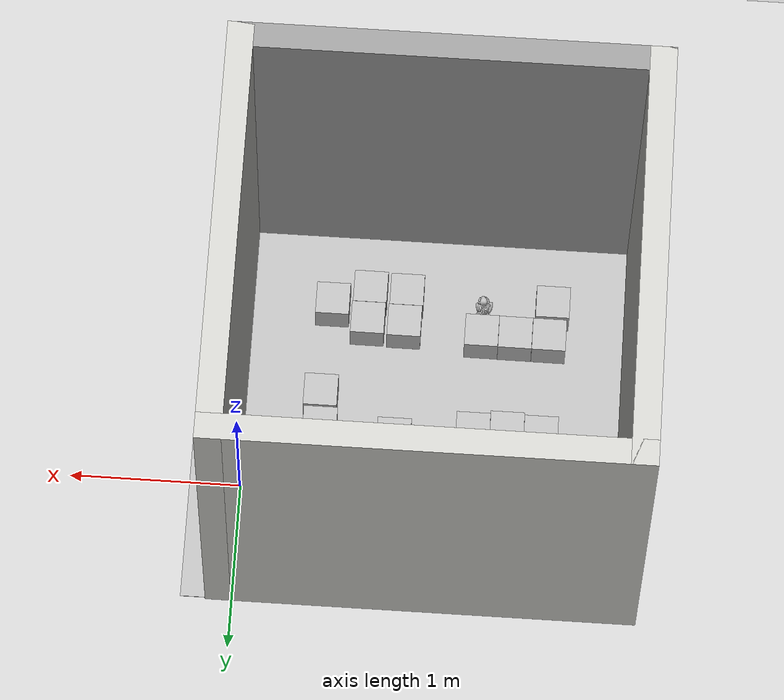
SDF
<sdf version="1.7">
 <world name="default">
  <light name="sun" type="directional">
   <pose>0 0 10 0 -0 0</pose>
   <diffuse>0.8 0.8 0.8 1</diffuse>
   <specular>0.2 0.2 0.2 1</specular>
   <attenuation>
    <range>1000</range>
    <constant>0.9</constant>
    <linear>0.01</linear>
    <quadratic>0.001</quadratic>
   </attenuation>
   <direction>-0.5 0.1 -0.9</direction>
   <spot><inner_angle>0</inner_angle><outer_angle>0</outer_angle><falloff>0</falloff></spot>
  </light>
  <model name="ground_plane">
   <static>1</static>
   <link name="link">
    <collision name="collision">
     <geometry><plane><normal>0 0 1</normal><size>100 100</size></plane></geometry>
     <surface>
      <contact><collide_bitmask>65535</collide_bitmask></contact>
      <friction><ode><mu>100</mu><mu2>50</mu2></ode></friction>
     </surface>
    </collision>
    <visual name="visual">
     <cast_shadows>0</cast_shadows>
     <geometry><plane><normal>0 0 1</normal><size>1 1</size></plane></geometry>
     <material>
      <script><uri>file://media/materials/scripts/gazebo.material</uri><name>Gazebo/Grey</name></script>
     </material>
    </visual>
   </link>
  </model>
  <gravity>0 0 -9.8</gravity>
  <magnetic_field>6e-06 2.3e-05 -4.2e-05</magnetic_field>
  <atmosphere type="adiabatic"/>
  <physics type="ode">
   <max_step_size>0.001</max_step_size>
   <real_time_factor>1</real_time_factor>
   <real_time_update_rate>1000</real_time_update_rate>
  </physics>
  <scene><ambient>0.4 0.4 0.4 1</ambient><background>0.7 0.7 0.7 1</background><shadows>1</shadows></scene>
  <audio><device>default</device></audio>
  <spherical_coordinates>
   <surface_model>EARTH_WGS84</surface_model>
   <latitude_deg>0</latitude_deg>
   <longitude_deg>0</longitude_deg>
   <elevation>0</elevation>
   <heading_deg>0</heading_deg>
  </spherical_coordinates>
  <model name="kalman_tapete_ciudad">
   <link name="link">
    <visual name="visual">
     <geometry><box><size>2.5 2.5 0.005</size></box></geometry>
     <material>
      <script>
       <uri>model://kalman_tapete_ciudad/material/script</uri>
       <uri>model://kalman_tapete_ciudad/material/textures</uri>
       <name>Custom/kalman_tapete_ciudad</name>
      </script>
     </material>
    </visual>
   </link>
   <static>1</static>
   <pose>-0.952242 -0.544491 0 0 -0 0</pose>
  </model>
  <model name="kalman_edificio">
   <pose>-1.75873 -0.999868 0.099 0 -0 -0.003254</pose>
   <link name="link">
    <inertial>
     <mass>2</mass>
     <inertia>
      <ixx>0.0416667</ixx>
      <ixy>0</ixy>
      <ixz>0</ixz>
      <iyy>0.0566667</iyy>
      <iyz>0</iyz>
      <izz>0.0683333</izz>
     </inertia>
    </inertial>
    <collision name="collision">
     <geometry><box><size>0.2 0.2 0.2</size></box></geometry>
     <surface>
      <friction><ode><mu>1</mu><mu2>1</mu2></ode></friction>
      <contact><ode><kp>1e+07</kp><kd>1</kd><min_depth>0.001</min_depth><max_vel>0.1</max_vel></ode></contact>
     </surface>
    </collision>
    <visual name="visual">
     <pose>0 0 -0.1 0 -0 0</pose>
     <geometry>
      <mesh><uri>model://kalman_edificio/meshes/kalman_edificio.dae</uri><scale>0.5 0.5 0.5</scale></mesh>
     </geometry>
    </visual>
   </link>
  </model>
  <model name="kalman_edificio_0">
   <pose>-1.5593 -1.00118 0.099 0 0 -0.003276</pose>
   <link name="link">
    <inertial>
     <mass>2</mass>
     <inertia>
      <ixx>0.0416667</ixx>
      <ixy>0</ixy>
      <ixz>0</ixz>
      <iyy>0.0566667</iyy>
      <iyz>0</iyz>
      <izz>0.0683333</izz>
     </inertia>
    </inertial>
    <collision name="collision">
     <geometry><box><size>0.2 0.2 0.2</size></box></geometry>
     <surface>
      <friction><ode><mu>1</mu><mu2>1</mu2></ode></friction>
      <contact><ode><kp>1e+07</kp><kd>1</kd><min_depth>0.001</min_depth><max_vel>0.1</max_vel></ode></contact>
     </surface>
    </collision>
    <visual name="visual">
     <pose>0 0 -0.1 0 -0 0</pose>
     <geometry>
      <mesh><uri>model://kalman_edificio/meshes/kalman_edificio.dae</uri><scale>0.5 0.5 0.5</scale></mesh>
     </geometry>
    </visual>
   </link>
  </model>
  <model name="kalman_edificio_1">
   <pose>-1.35987 -1.00319 0.099 -0 -0 -0.003325</pose>
   <link name="link">
    <inertial>
     <mass>2</mass>
     <inertia>
      <ixx>0.0416667</ixx>
      <ixy>0</ixy>
      <ixz>0</ixz>
      <iyy>0.0566667</iyy>
      <iyz>0</iyz>
      <izz>0.0683333</izz>
     </inertia>
    </inertial>
    <collision name="collision">
     <geometry><box><size>0.2 0.2 0.2</size></box></geometry>
     <surface>
      <friction><ode><mu>1</mu><mu2>1</mu2></ode></friction>
      <contact><ode><kp>1e+07</kp><kd>1</kd><min_depth>0.001</min_depth><max_vel>0.1</max_vel></ode></contact>
     </surface>
    </collision>
    <visual name="visual">
     <pose>0 0 -0.1 0 -0 0</pose>
     <geometry>
      <mesh><uri>model://kalman_edificio/meshes/kalman_edificio.dae</uri><scale>0.5 0.5 0.5</scale></mesh>
     </geometry>
    </visual>
   </link>
  </model>
  <model name="kalman_edificio_2">
   <pose>-0.900582 -1.03661 0.099 0 0 -0.000802</pose>
   <link name="link">
    <inertial>
     <mass>2</mass>
     <inertia>
      <ixx>0.0416667</ixx>
      <ixy>0</ixy>
      <ixz>0</ixz>
      <iyy>0.0566667</iyy>
      <iyz>0</iyz>
      <izz>0.0683333</izz>
     </inertia>
    </inertial>
    <collision name="collision">
     <geometry><box><size>0.2 0.2 0.2</size></box></geometry>
     <surface>
      <friction><ode><mu>1</mu><mu2>1</mu2></ode></friction>
      <contact><ode><kp>1e+07</kp><kd>1</kd><min_depth>0.001</min_depth><max_vel>0.1</max_vel></ode></contact>
     </surface>
    </collision>
    <visual name="visual">
     <pose>0 0 -0.1 0 -0 0</pose>
     <geometry>
      <mesh><uri>model://kalman_edificio/meshes/kalman_edificio.dae</uri><scale>0.5 0.5 0.5</scale></mesh>
     </geometry>
    </visual>
   </link>
  </model>
  <model name="kalman_edificio_3">
   <pose>-0.683905 -1.04214 0.099 0 0 -0.003459</pose>
   <link name="link">
    <inertial>
     <mass>2</mass>
     <inertia>
      <ixx>0.0416667</ixx>
      <ixy>0</ixy>
      <ixz>0</ixz>
      <iyy>0.0566667</iyy>
      <iyz>0</iyz>
      <izz>0.0683333</izz>
     </inertia>
    </inertial>
    <collision name="collision">
     <geometry><box><size>0.2 0.2 0.2</size></box></geometry>
     <surface>
      <friction><ode><mu>1</mu><mu2>1</mu2></ode></friction>
      <contact><ode><kp>1e+07</kp><kd>1</kd><min_depth>0.001</min_depth><max_vel>0.1</max_vel></ode></contact>
     </surface>
    </collision>
    <visual name="visual">
     <pose>0 0 -0.1 0 -0 0</pose>
     <geometry>
      <mesh><uri>model://kalman_edificio/meshes/kalman_edificio.dae</uri><scale>0.5 0.5 0.5</scale></mesh>
     </geometry>
    </visual>
   </link>
  </model>
  <model name="kalman_edificio_4">
   <pose>-0.905453 -1.23575 0.099 0 0 -0.00079</pose>
   <link name="link">
    <inertial>
     <mass>2</mass>
     <inertia>
      <ixx>0.0416667</ixx>
      <ixy>0</ixy>
      <ixz>0</ixz>
      <iyy>0.0566667</iyy>
      <iyz>0</iyz>
      <izz>0.0683333</izz>
     </inertia>
    </inertial>
    <collision name="collision">
     <geometry><box><size>0.2 0.2 0.2</size></box></geometry>
     <surface>
      <friction><ode><mu>1</mu><mu2>1</mu2></ode></friction>
      <contact><ode><kp>1e+07</kp><kd>1</kd><min_depth>0.001</min_depth><max_vel>0.1</max_vel></ode></contact>
     </surface>
    </collision>
    <visual name="visual">
     <pose>0 0 -0.1 0 -0 0</pose>
     <geometry>
      <mesh><uri>model://kalman_edificio/meshes/kalman_edificio.dae</uri><scale>0.5 0.5 0.5</scale></mesh>
     </geometry>
    </visual>
   </link>
  </model>
  <model name="kalman_edificio_5">
   <pose>-0.688628 -1.24132 0.099 0 0 -0.003459</pose>
   <link name="link">
    <inertial>
     <mass>2</mass>
     <inertia>
      <ixx>0.0416667</ixx>
      <ixy>0</ixy>
      <ixz>0</ixz>
      <iyy>0.0566667</iyy>
      <iyz>0</iyz>
      <izz>0.0683333</izz>
     </inertia>
    </inertial>
    <collision name="collision">
     <geometry><box><size>0.2 0.2 0.2</size></box></geometry>
     <surface>
      <friction><ode><mu>1</mu><mu2>1</mu2></ode></friction>
      <contact><ode><kp>1e+07</kp><kd>1</kd><min_depth>0.001</min_depth><max_vel>0.1</max_vel></ode></contact>
     </surface>
    </collision>
    <visual name="visual">
     <pose>0 0 -0.1 0 -0 0</pose>
     <geometry>
      <mesh><uri>model://kalman_edificio/meshes/kalman_edificio.dae</uri><scale>0.5 0.5 0.5</scale></mesh>
     </geometry>
    </visual>
   </link>
  </model>
  <model name="kalman_edificio_6">
   <pose>-0.88203 -0.312273 0.099 0 -0 0.003441</pose>
   <link name="link">
    <inertial>
     <mass>2</mass>
     <inertia>
      <ixx>0.0416667</ixx>
      <ixy>0</ixy>
      <ixz>0</ixz>
      <iyy>0.0566667</iyy>
      <iyz>0</iyz>
      <izz>0.0683333</izz>
     </inertia>
    </inertial>
    <collision name="collision">
     <geometry><box><size>0.2 0.2 0.2</size></box></geometry>
     <surface>
      <friction><ode><mu>1</mu><mu2>1</mu2></ode></friction>
      <contact><ode><kp>1e+07</kp><kd>1</kd><min_depth>0.001</min_depth><max_vel>0.1</max_vel></ode></contact>
     </surface>
    </collision>
    <visual name="visual">
     <pose>0 0 -0.1 0 -0 0</pose>
     <geometry>
      <mesh><uri>model://kalman_edificio/meshes/kalman_edificio.dae</uri><scale>0.5 0.5 0.5</scale></mesh>
     </geometry>
    </visual>
   </link>
  </model>
  <model name="kalman_edificio_7">
   <pose>-0.889023 -0.112903 0.099 0 -0 0.003273</pose>
   <link name="link">
    <inertial>
     <mass>2</mass>
     <inertia>
      <ixx>0.0416667</ixx>
      <ixy>0</ixy>
      <ixz>0</ixz>
      <iyy>0.0566667</iyy>
      <iyz>0</iyz>
      <izz>0.0683333</izz>
     </inertia>
    </inertial>
    <collision name="collision">
     <geometry><box><size>0.2 0.2 0.2</size></box></geometry>
     <surface>
      <friction><ode><mu>1</mu><mu2>1</mu2></ode></friction>
      <contact><ode><kp>1e+07</kp><kd>1</kd><min_depth>0.001</min_depth><max_vel>0.1</max_vel></ode></contact>
     </surface>
    </collision>
    <visual name="visual">
     <pose>0 0 -0.1 0 -0 0</pose>
     <geometry>
      <mesh><uri>model://kalman_edificio/meshes/kalman_edificio.dae</uri><scale>0.5 0.5 0.5</scale></mesh>
     </geometry>
    </visual>
   </link>
  </model>
  <model name="kalman_edificio_9">
   <pose>-0.470473 -1.15194 0.099 0 0 -0.000622</pose>
   <link name="link">
    <inertial>
     <mass>2</mass>
     <inertia>
      <ixx>0.0416667</ixx>
      <ixy>0</ixy>
      <ixz>0</ixz>
      <iyy>0.0566667</iyy>
      <iyz>0</iyz>
      <izz>0.0683333</izz>
     </inertia>
    </inertial>
    <collision name="collision">
     <geometry><box><size>0.2 0.2 0.2</size></box></geometry>
     <surface>
      <friction><ode><mu>1</mu><mu2>1</mu2></ode></friction>
      <contact><ode><kp>1e+07</kp><kd>1</kd><min_depth>0.001</min_depth><max_vel>0.1</max_vel></ode></contact>
     </surface>
    </collision>
    <visual name="visual">
     <pose>0 0 -0.1 0 -0 0</pose>
     <geometry>
      <mesh><uri>model://kalman_edificio/meshes/kalman_edificio.dae</uri><scale>0.5 0.5 0.5</scale></mesh>
     </geometry>
    </visual>
   </link>
  </model>
  <model name="kalman_edificio_10">
   <pose>-1.77103 -1.21133 0.099 0 -0 0</pose>
   <link name="link">
    <inertial>
     <mass>2</mass>
     <inertia>
      <ixx>0.0416667</ixx>
      <ixy>0</ixy>
      <ixz>0</ixz>
      <iyy>0.0566667</iyy>
      <iyz>0</iyz>
      <izz>0.0683333</izz>
     </inertia>
    </inertial>
    <collision name="collision">
     <geometry><box><size>0.2 0.2 0.2</size></box></geometry>
     <surface>
      <friction><ode><mu>1</mu><mu2>1</mu2></ode></friction>
      <contact><ode><kp>1e+07</kp><kd>1</kd><min_depth>0.001</min_depth><max_vel>0.1</max_vel></ode></contact>
     </surface>
    </collision>
    <visual name="visual">
     <pose>0 0 -0.1 0 -0 0</pose>
     <geometry>
      <mesh><uri>model://kalman_edificio/meshes/kalman_edificio.dae</uri><scale>0.5 0.5 0.5</scale></mesh>
     </geometry>
    </visual>
   </link>
  </model>
  <model name="kalman_edificio_12">
   <pose>-1.7405 -0.379601 0.099 0 -0 0.001007</pose>
   <link name="link">
    <inertial>
     <mass>2</mass>
     <inertia>
      <ixx>0.0416667</ixx>
      <ixy>0</ixy>
      <ixz>0</ixz>
      <iyy>0.0566667</iyy>
      <iyz>0</iyz>
      <izz>0.0683333</izz>
     </inertia>
    </inertial>
    <collision name="collision">
     <geometry><box><size>0.2 0.2 0.2</size></box></geometry>
     <surface>
      <friction><ode><mu>1</mu><mu2>1</mu2></ode></friction>
      <contact><ode><kp>1e+07</kp><kd>1</kd><min_depth>0.001</min_depth><max_vel>0.1</max_vel></ode></contact>
     </surface>
    </collision>
    <visual name="visual">
     <pose>0 0 -0.1 0 -0 0</pose>
     <geometry>
      <mesh><uri>model://kalman_edificio/meshes/kalman_edificio.dae</uri><scale>0.5 0.5 0.5</scale></mesh>
     </geometry>
    </visual>
   </link>
  </model>
  <model name="kalman_edificio_12_clone">
   <pose>-1.74118 0.036452 0.099 0 -0 0</pose>
   <link name="link">
    <inertial>
     <mass>2</mass>
     <inertia>
      <ixx>0.0416667</ixx>
      <ixy>0</ixy>
      <ixz>0</ixz>
      <iyy>0.0566667</iyy>
      <iyz>0</iyz>
      <izz>0.0683333</izz>
     </inertia>
    </inertial>
    <collision name="collision">
     <geometry><box><size>0.2 0.2 0.2</size></box></geometry>
     <surface>
      <friction><ode><mu>1</mu><mu2>1</mu2></ode></friction>
      <contact><ode><kp>1e+07</kp><kd>1</kd><min_depth>0.001</min_depth><max_vel>0.1</max_vel></ode></contact>
     </surface>
    </collision>
    <visual name="visual">
     <pose>0 0 -0.1 0 -0 0</pose>
     <geometry>
      <mesh><uri>model://kalman_edificio/meshes/kalman_edificio.dae</uri><scale>0.5 0.5 0.5</scale></mesh>
     </geometry>
    </visual>
   </link>
  </model>
  <model name="kalman_edificio_12_clone_0">
   <pose>-1.72625 -0.180352 0.099 0 -0 0.002305</pose>
   <link name="link">
    <inertial>
     <mass>2</mass>
     <inertia>
      <ixx>0.0416667</ixx>
      <ixy>0</ixy>
      <ixz>0</ixz>
      <iyy>0.0566667</iyy>
      <iyz>0</iyz>
      <izz>0.0683333</izz>
     </inertia>
    </inertial>
    <collision name="collision">
     <geometry><box><size>0.2 0.2 0.2</size></box></geometry>
     <surface>
      <friction><ode><mu>1</mu><mu2>1</mu2></ode></friction>
      <contact><ode><kp>1e+07</kp><kd>1</kd><min_depth>0.001</min_depth><max_vel>0.1</max_vel></ode></contact>
     </surface>
    </collision>
    <visual name="visual">
     <pose>0 0 -0.1 0 -0 0</pose>
     <geometry>
      <mesh><uri>model://kalman_edificio/meshes/kalman_edificio.dae</uri><scale>0.5 0.5 0.5</scale></mesh>
     </geometry>
    </visual>
   </link>
  </model>
  <model name="kalman_edificio_12_clone_1">
   <pose>-1.5414 -0.393369 0.099 0 -0 0.000686</pose>
   <link name="link">
    <inertial>
     <mass>2</mass>
     <inertia>
      <ixx>0.0416667</ixx>
      <ixy>0</ixy>
      <ixz>0</ixz>
      <iyy>0.0566667</iyy>
      <iyz>0</iyz>
      <izz>0.0683333</izz>
     </inertia>
    </inertial>
    <collision name="collision">
     <geometry><box><size>0.2 0.2 0.2</size></box></geometry>
     <surface>
      <friction><ode><mu>1</mu><mu2>1</mu2></ode></friction>
      <contact><ode><kp>1e+07</kp><kd>1</kd><min_depth>0.001</min_depth><max_vel>0.1</max_vel></ode></contact>
     </surface>
    </collision>
    <visual name="visual">
     <pose>0 0 -0.1 0 -0 0</pose>
     <geometry>
      <mesh><uri>model://kalman_edificio/meshes/kalman_edificio.dae</uri><scale>0.5 0.5 0.5</scale></mesh>
     </geometry>
    </visual>
   </link>
  </model>
  <model name="kalman_edificio_12_clone_2">
   <pose>-1.34217 -0.376745 0.099 0 -0 0.000672</pose>
   <link name="link">
    <inertial>
     <mass>2</mass>
     <inertia>
      <ixx>0.0416667</ixx>
      <ixy>0</ixy>
      <ixz>0</ixz>
      <iyy>0.0566667</iyy>
      <iyz>0</iyz>
      <izz>0.0683333</izz>
     </inertia>
    </inertial>
    <collision name="collision">
     <geometry><box><size>0.2 0.2 0.2</size></box></geometry>
     <surface>
      <friction><ode><mu>1</mu><mu2>1</mu2></ode></friction>
      <contact><ode><kp>1e+07</kp><kd>1</kd><min_depth>0.001</min_depth><max_vel>0.1</max_vel></ode></contact>
     </surface>
    </collision>
    <visual name="visual">
     <pose>0 0 -0.1 0 -0 0</pose>
     <geometry>
      <mesh><uri>model://kalman_edificio/meshes/kalman_edificio.dae</uri><scale>0.5 0.5 0.5</scale></mesh>
     </geometry>
    </visual>
   </link>
  </model>
  <model name="kalman_edificio_12_clone_3">
   <pose>-0.886027 0.0865 0.099 0 -0 0.0031</pose>
   <link name="link">
    <inertial>
     <mass>2</mass>
     <inertia>
      <ixx>0.0416667</ixx>
      <ixy>0</ixy>
      <ixz>0</ixz>
      <iyy>0.0566667</iyy>
      <iyz>0</iyz>
      <izz>0.0683333</izz>
     </inertia>
    </inertial>
    <collision name="collision">
     <geometry><box><size>0.2 0.2 0.2</size></box></geometry>
     <surface>
      <friction><ode><mu>1</mu><mu2>1</mu2></ode></friction>
      <contact><ode><kp>1e+07</kp><kd>1</kd><min_depth>0.001</min_depth><max_vel>0.1</max_vel></ode></contact>
     </surface>
    </collision>
    <visual name="visual">
     <pose>0 0 -0.1 0 -0 0</pose>
     <geometry>
      <mesh><uri>model://kalman_edificio/meshes/kalman_edificio.dae</uri><scale>0.5 0.5 0.5</scale></mesh>
     </geometry>
    </visual>
   </link>
  </model>
  <model name="kalman_edificio_12_clone_4">
   <pose>-0.437006 -0.564046 0.099 0 -0 0</pose>
   <link name="link">
    <inertial>
     <mass>2</mass>
     <inertia>
      <ixx>0.0416667</ixx>
      <ixy>0</ixy>
      <ixz>0</ixz>
      <iyy>0.0566667</iyy>
      <iyz>0</iyz>
      <izz>0.0683333</izz>
     </inertia>
    </inertial>
    <collision name="collision">
     <geometry><box><size>0.2 0.2 0.2</size></box></geometry>
     <surface>
      <friction><ode><mu>1</mu><mu2>1</mu2></ode></friction>
      <contact><ode><kp>1e+07</kp><kd>1</kd><min_depth>0.001</min_depth><max_vel>0.1</max_vel></ode></contact>
     </surface>
    </collision>
    <visual name="visual">
     <pose>0 0 -0.1 0 -0 0</pose>
     <geometry>
      <mesh><uri>model://kalman_edificio/meshes/kalman_edificio.dae</uri><scale>0.5 0.5 0.5</scale></mesh>
     </geometry>
    </visual>
   </link>
  </model>
  <model name="kalman_edificio_12_clone_5">
   <pose>-0.444917 -0.355635 0.099 0 -0 0</pose>
   <link name="link">
    <inertial>
     <mass>2</mass>
     <inertia>
      <ixx>0.0416667</ixx>
      <ixy>0</ixy>
      <ixz>0</ixz>
      <iyy>0.0566667</iyy>
      <iyz>0</iyz>
      <izz>0.0683333</izz>
     </inertia>
    </inertial>
    <collision name="collision">
     <geometry><box><size>0.2 0.2 0.2</size></box></geometry>
     <surface>
      <friction><ode><mu>1</mu><mu2>1</mu2></ode></friction>
      <contact><ode><kp>1e+07</kp><kd>1</kd><min_depth>0.001</min_depth><max_vel>0.1</max_vel></ode></contact>
     </surface>
    </collision>
    <visual name="visual">
     <pose>0 0 -0.1 0 -0 0</pose>
     <geometry>
      <mesh><uri>model://kalman_edificio/meshes/kalman_edificio.dae</uri><scale>0.5 0.5 0.5</scale></mesh>
     </geometry>
    </visual>
   </link>
  </model>
  <model name="kalman_edificio_12_clone_6">
   <pose>-0.439251 -0.154091 0.099 0 -0 0.001121</pose>
   <link name="link">
    <inertial>
     <mass>2</mass>
     <inertia>
      <ixx>0.0416667</ixx>
      <ixy>0</ixy>
      <ixz>0</ixz>
      <iyy>0.0566667</iyy>
      <iyz>0</iyz>
      <izz>0.0683333</izz>
     </inertia>
    </inertial>
    <collision name="collision">
     <geometry><box><size>0.2 0.2 0.2</size></box></geometry>
     <surface>
      <friction><ode><mu>1</mu><mu2>1</mu2></ode></friction>
      <contact><ode><kp>1e+07</kp><kd>1</kd><min_depth>0.001</min_depth><max_vel>0.1</max_vel></ode></contact>
     </surface>
    </collision>
    <visual name="visual">
     <pose>0 0 -0.1 0 -0 0</pose>
     <geometry>
      <mesh><uri>model://kalman_edificio/meshes/kalman_edificio.dae</uri><scale>0.5 0.5 0.5</scale></mesh>
     </geometry>
    </visual>
   </link>
  </model>
  <model name="Squirrel">
   <link name="link_0">
    <visual name="visual">
     <geometry>
      <mesh><uri>/ros2_ws/install/kalman_gazebo/share/kalman_gazebo/models/squirrel/meshes/model.obj</uri></mesh>
     </geometry>
    </visual>
    <collision name="collision_0">
     <geometry>
      <mesh><uri>/ros2_ws/install/kalman_gazebo/share/kalman_gazebo/models/squirrel/meshes/model.obj</uri></mesh>
     </geometry>
    </collision>
    <inertial>
     <inertia><ixx>1</ixx><ixy>0</ixy><ixz>0</ixz><iyy>1</iyy><iyz>0</iyz><izz>1</izz></inertia>
     <mass>1</mass>
    </inertial>
   </link>
   <pose>-1.36742 -1.20353 -7.5e-05 -0.002133 -0.004121 5e-06</pose>
  </model>
  <model name="Squirrel_0">
   <link name="link_0">
    <visual name="visual">
     <geometry>
      <mesh><uri>/ros2_ws/install/kalman_gazebo/share/kalman_gazebo/models/squirrel/meshes/model.obj</uri></mesh>
     </geometry>
    </visual>
    <collision name="collision_0">
     <geometry>
      <mesh><uri>/ros2_ws/install/kalman_gazebo/share/kalman_gazebo/models/squirrel/meshes/model.obj</uri></mesh>
     </geometry>
    </collision>
    <inertial>
     <inertia><ixx>1</ixx><ixy>0</ixy><ixz>0</ixz><iyy>1</iyy><iyz>0</iyz><izz>1</izz></inertia>
     <mass>1</mass>
    </inertial>
   </link>
   <pose>-1.36132 0.061532 -8.3e-05 -0.002133 -0.004121 0</pose>
  </model>
  <model name="kalman_laboratorio">
   <pose>-1.09857 -0.53504 0 0 -0 0</pose>
   <link name="Wall_11">
    <collision name="Wall_11_Collision">
     <geometry><box><size>2.5 0.15 2.5</size></box></geometry>
     <pose>0 0 1.25 0 -0 0</pose>
    </collision>
    <visual name="Wall_11_Visual">
     <pose>0 0 1.25 0 -0 0</pose>
     <geometry><box><size>2.5 0.15 2.5</size></box></geometry>
     <material>
      <script><uri>file://media/materials/scripts/gazebo.material</uri><name>Gazebo/Grey</name></script>
      <ambient>1 1 1 1</ambient>
     </material>
     <meta><layer>0</layer></meta>
    </visual>
    <pose>-0 -1.175 0 0 -0 0</pose>
   </link>
   <link name="Wall_13">
    <collision name="Wall_13_Collision">
     <geometry><box><size>2.5 0.15 2.5</size></box></geometry>
     <pose>0 0 1.25 0 -0 0</pose>
    </collision>
    <visual name="Wall_13_Visual">
     <pose>0 0 1.25 0 -0 0</pose>
     <geometry><box><size>2.5 0.15 2.5</size></box></geometry>
     <material>
      <script><uri>file://media/materials/scripts/gazebo.material</uri><name>Gazebo/CeilingTiled</name></script>
      <ambient>1 1 1 1</ambient>
     </material>
     <meta><layer>0</layer></meta>
    </visual>
    <pose>1.175 0 0 0 -0 1.5708</pose>
   </link>
   <link name="Wall_14">
    <collision name="Wall_14_Collision">
     <geometry><box><size>2.5 0.15 2.5</size></box></geometry>
     <pose>0 0 1.25 0 -0 0</pose>
    </collision>
    <visual name="Wall_14_Visual">
     <pose>0 0 1.25 0 -0 0</pose>
     <geometry><box><size>2.5 0.15 2.5</size></box></geometry>
     <material>
      <script><uri>file://media/materials/scripts/gazebo.material</uri><name>Gazebo/CeilingTiled</name></script>
      <ambient>1 1 1 1</ambient>
     </material>
     <meta><layer>0</layer></meta>
    </visual>
    <pose>-0 1.175 0 0 -0 3.14159</pose>
   </link>
   <link name="Wall_15">
    <collision name="Wall_15_Collision">
     <geometry><box><size>2.5 0.15 2.5</size></box></geometry>
     <pose>0 0 1.25 0 -0 0</pose>
    </collision>
    <visual name="Wall_15_Visual">
     <pose>0 0 1.25 0 -0 0</pose>
     <geometry><box><size>2.5 0.15 2.5</size></box></geometry>
     <material>
      <script><uri>file://media/materials/scripts/gazebo.material</uri><name>Gazebo/CeilingTiled</name></script>
      <ambient>1 1 1 1</ambient>
     </material>
     <meta><layer>0</layer></meta>
    </visual>
    <pose>-1.175 0 0 0 -0 -1.5708</pose>
   </link>
   <static>1</static>
  </model>
  <model name="Racoon">
   <link name="link_0">
    <visual name="visual">
     <geometry>
      <mesh><uri>/ros2_ws/install/kalman_gazebo/share/kalman_gazebo/models/racoon/meshes/model.obj</uri></mesh>
     </geometry>
    </visual>
    <collision name="collision_0">
     <geometry>
      <mesh><uri>/ros2_ws/install/kalman_gazebo/share/kalman_gazebo/models/racoon/meshes/model.obj</uri></mesh>
     </geometry>
    </collision>
    <inertial>
     <inertia><ixx>1</ixx><ixy>0</ixy><ixz>0</ixz><iyy>1</iyy><iyz>0</iyz><izz>1</izz></inertia>
     <mass>1</mass>
    </inertial>
   </link>
   <pose>-0.415384 0.099438 -0.000552 -0.005803 -0.005146 -0.006021</pose>
  </model>
 </world>
</sdf>
